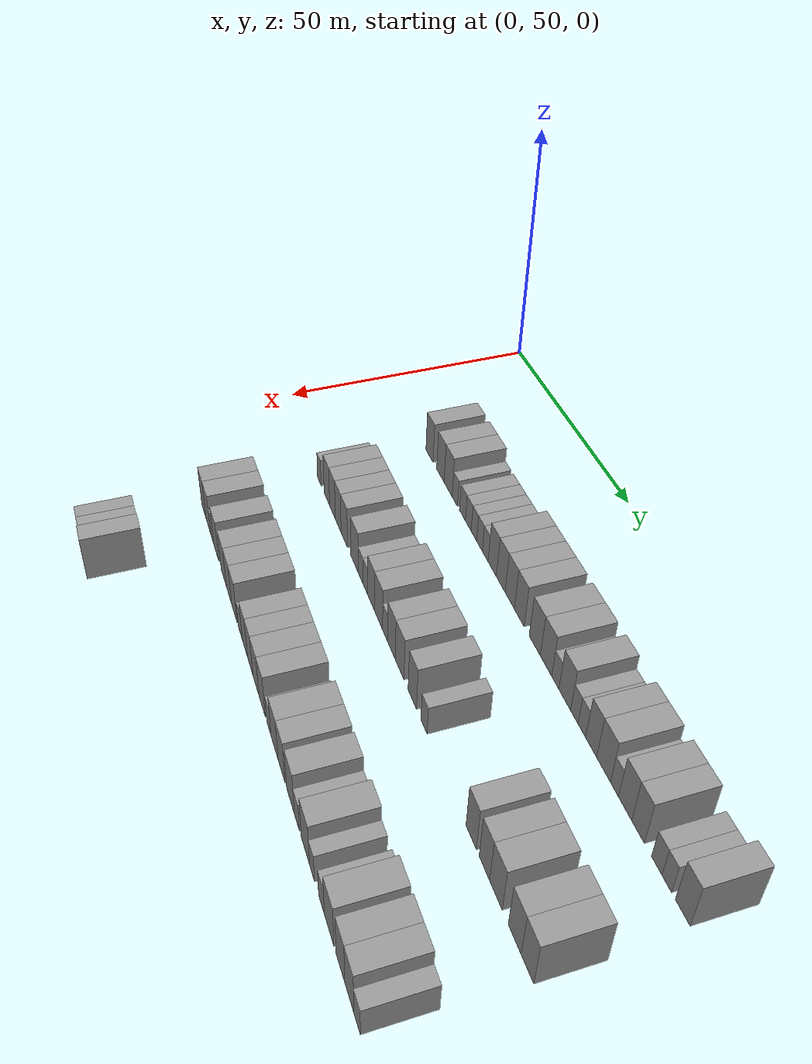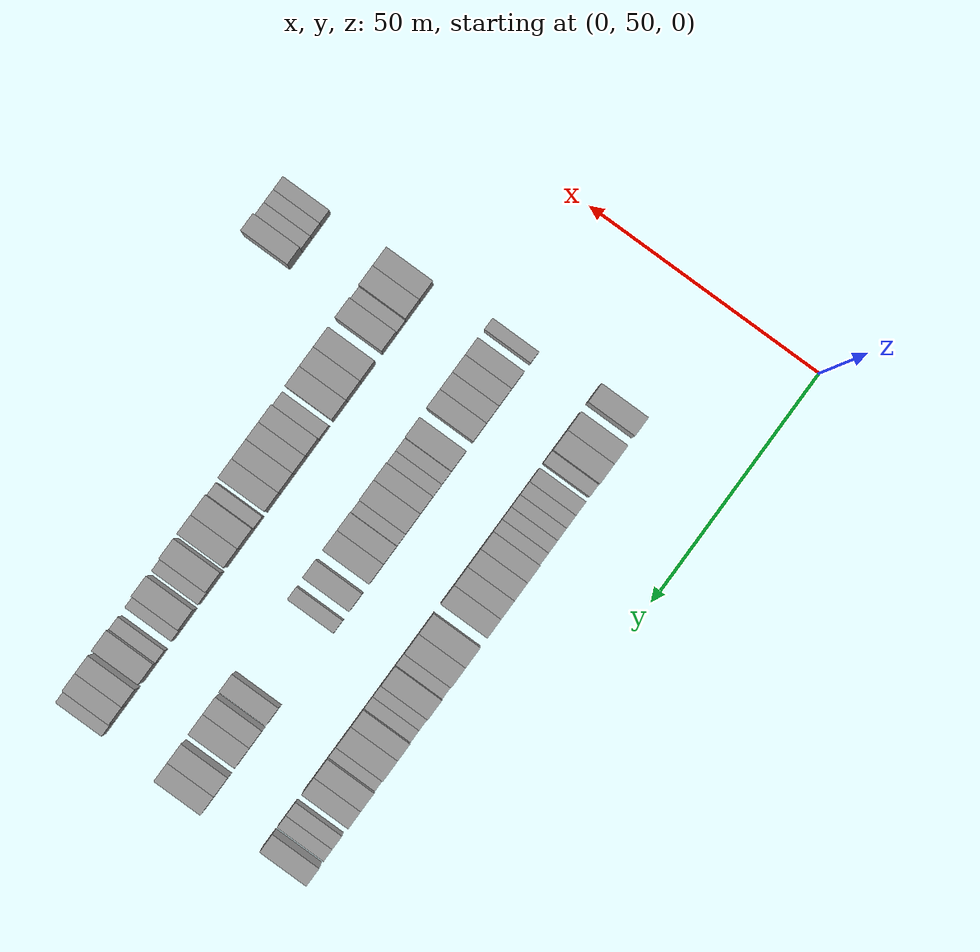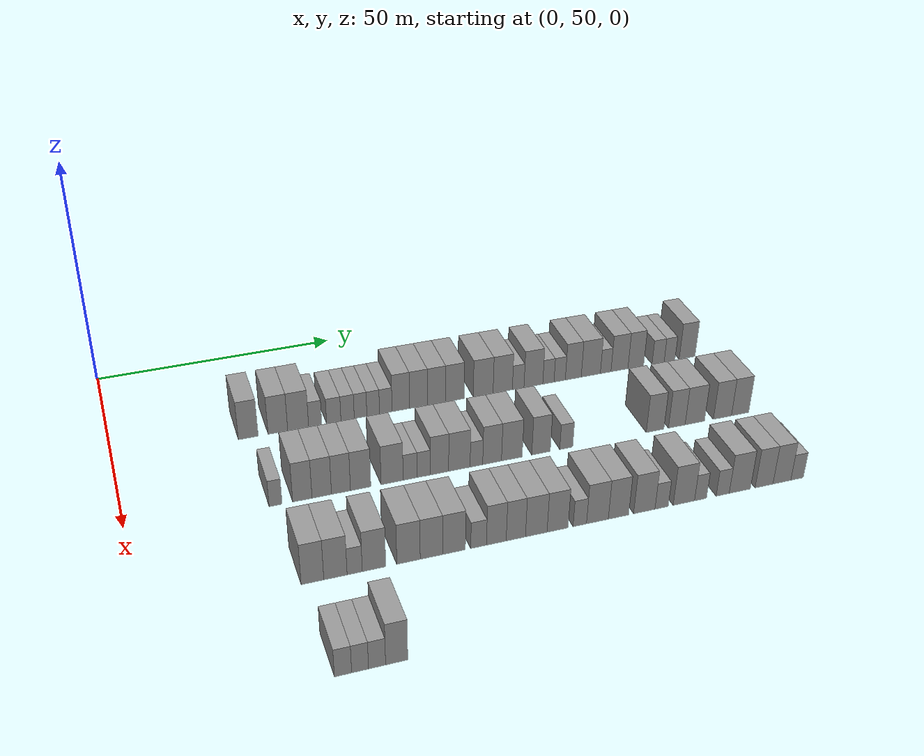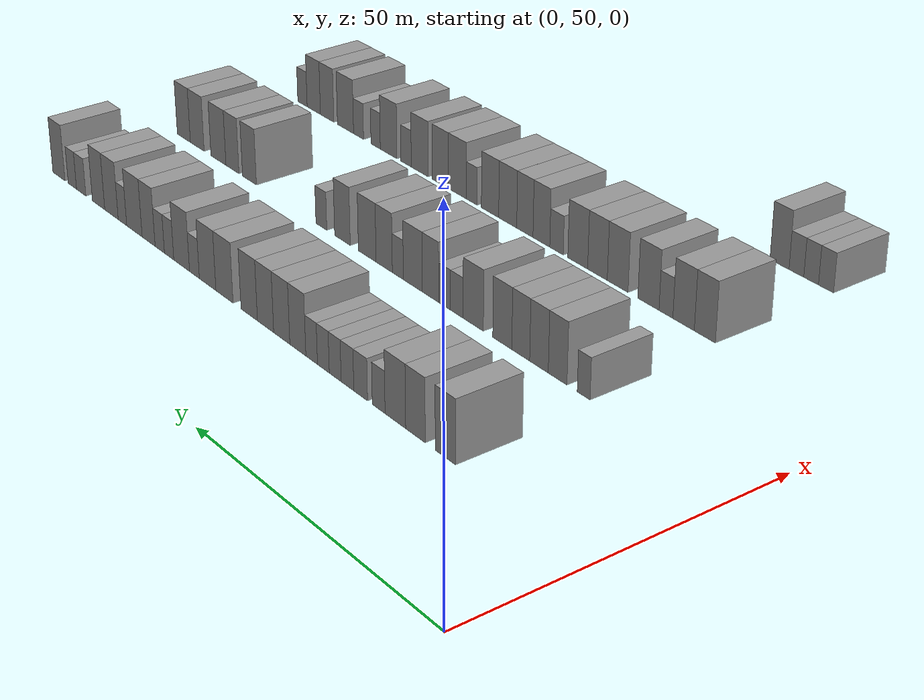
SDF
<sdf version="1.6">
 <world name="default">
  <model name="building_106">
   <static>1</static>
   <pose>25.0000 76.7027 0 0.000000 0.000000 0.000000</pose>
   <link name="link">
    <pose>0 0 4.50 0 0 0</pose>
    <collision name="collision"><geometry><box><size>10.0000 3.9942 9.0000</size></box></geometry></collision>
    <visual name="visual">
     <cast_shadows>0</cast_shadows>
     <geometry><box><size>10.0000 3.9942 9.0000</size></box></geometry>
     <material>
      <script>
       <uri>model://grey_wall/materials/scripts</uri>
       <uri>model://grey_wall/materials/textures</uri>
       <name>vrc/grey_wall</name>
      </script>
     </material>
    </visual>
   </link>
  </model>
  <model name="building_107">
   <static>1</static>
   <pose>25.0000 82.6907 0 0.000000 0.000000 0.000000</pose>
   <link name="link">
    <pose>0 0 4.50 0 0 0</pose>
    <collision name="collision"><geometry><box><size>10.0000 3.9817 9.0000</size></box></geometry></collision>
    <visual name="visual">
     <cast_shadows>0</cast_shadows>
     <geometry><box><size>10.0000 3.9817 9.0000</size></box></geometry>
     <material>
      <script>
       <uri>model://grey_wall/materials/scripts</uri>
       <uri>model://grey_wall/materials/textures</uri>
       <name>vrc/grey_wall</name>
      </script>
     </material>
    </visual>
   </link>
  </model>
  <model name="building_108">
   <static>1</static>
   <pose>25.0000 86.8249 0 0.000000 0.000000 0.000000</pose>
   <link name="link">
    <pose>0 0 4.50 0 0 0</pose>
    <collision name="collision"><geometry><box><size>10.0000 4.2866 9.0000</size></box></geometry></collision>
    <visual name="visual">
     <cast_shadows>0</cast_shadows>
     <geometry><box><size>10.0000 4.2866 9.0000</size></box></geometry>
     <material>
      <script>
       <uri>model://grey_wall/materials/scripts</uri>
       <uri>model://grey_wall/materials/textures</uri>
       <name>vrc/grey_wall</name>
      </script>
     </material>
    </visual>
   </link>
  </model>
  <model name="building_109">
   <static>1</static>
   <pose>25.0000 90.3235 0 0.000000 0.000000 0.000000</pose>
   <link name="link">
    <pose>0 0 3.00 0 0 0</pose>
    <collision name="collision"><geometry><box><size>10.0000 2.7106 6.0000</size></box></geometry></collision>
    <visual name="visual">
     <cast_shadows>0</cast_shadows>
     <geometry><box><size>10.0000 2.7106 6.0000</size></box></geometry>
     <material>
      <script>
       <uri>model://grey_wall/materials/scripts</uri>
       <uri>model://grey_wall/materials/textures</uri>
       <name>vrc/grey_wall</name>
      </script>
     </material>
    </visual>
   </link>
  </model>
  <model name="building_110">
   <static>1</static>
   <pose>25.0000 94.1667 0 0.000000 0.000000 0.000000</pose>
   <link name="link">
    <pose>0 0 3.00 0 0 0</pose>
    <collision name="collision"><geometry><box><size>10.0000 2.9757 6.0000</size></box></geometry></collision>
    <visual name="visual">
     <cast_shadows>0</cast_shadows>
     <geometry><box><size>10.0000 2.9757 6.0000</size></box></geometry>
     <material>
      <script>
       <uri>model://grey_wall/materials/scripts</uri>
       <uri>model://grey_wall/materials/textures</uri>
       <name>vrc/grey_wall</name>
      </script>
     </material>
    </visual>
   </link>
  </model>
  <model name="building_111">
   <static>1</static>
   <pose>25.0000 97.0424 0 0.000000 0.000000 0.000000</pose>
   <link name="link">
    <pose>0 0 3.00 0 0 0</pose>
    <collision name="collision"><geometry><box><size>10.0000 2.7758 6.0000</size></box></geometry></collision>
    <visual name="visual">
     <cast_shadows>0</cast_shadows>
     <geometry><box><size>10.0000 2.7758 6.0000</size></box></geometry>
     <material>
      <script>
       <uri>model://grey_wall/materials/scripts</uri>
       <uri>model://grey_wall/materials/textures</uri>
       <name>vrc/grey_wall</name>
      </script>
     </material>
    </visual>
   </link>
  </model>
  <model name="building_112">
   <static>1</static>
   <pose>25.0000 99.7522 0 0.000000 0.000000 0.000000</pose>
   <link name="link">
    <pose>0 0 3.00 0 0 0</pose>
    <collision name="collision"><geometry><box><size>10.0000 2.6437 6.0000</size></box></geometry></collision>
    <visual name="visual">
     <cast_shadows>0</cast_shadows>
     <geometry><box><size>10.0000 2.6437 6.0000</size></box></geometry>
     <material>
      <script>
       <uri>model://grey_wall/materials/scripts</uri>
       <uri>model://grey_wall/materials/textures</uri>
       <name>vrc/grey_wall</name>
      </script>
     </material>
    </visual>
   </link>
  </model>
  <model name="building_113">
   <static>1</static>
   <pose>25.0000 102.4102 0 0.000000 0.000000 0.000000</pose>
   <link name="link">
    <pose>0 0 3.00 0 0 0</pose>
    <collision name="collision"><geometry><box><size>10.0000 2.6722 6.0000</size></box></geometry></collision>
    <visual name="visual">
     <cast_shadows>0</cast_shadows>
     <geometry><box><size>10.0000 2.6722 6.0000</size></box></geometry>
     <material>
      <script>
       <uri>model://grey_wall/materials/scripts</uri>
       <uri>model://grey_wall/materials/textures</uri>
       <name>vrc/grey_wall</name>
      </script>
     </material>
    </visual>
   </link>
  </model>
  <model name="building_114">
   <static>1</static>
   <pose>25.0000 105.0721 0 0.000000 0.000000 0.000000</pose>
   <link name="link">
    <pose>0 0 3.00 0 0 0</pose>
    <collision name="collision"><geometry><box><size>10.0000 2.6515 6.0000</size></box></geometry></collision>
    <visual name="visual">
     <cast_shadows>0</cast_shadows>
     <geometry><box><size>10.0000 2.6515 6.0000</size></box></geometry>
     <material>
      <script>
       <uri>model://grey_wall/materials/scripts</uri>
       <uri>model://grey_wall/materials/textures</uri>
       <name>vrc/grey_wall</name>
      </script>
     </material>
    </visual>
   </link>
  </model>
  <model name="building_115">
   <static>1</static>
   <pose>25.0000 108.2667 0 0.000000 0.000000 0.000000</pose>
   <link name="link">
    <pose>0 0 4.50 0 0 0</pose>
    <collision name="collision"><geometry><box><size>10.0000 3.7378 9.0000</size></box></geometry></collision>
    <visual name="visual">
     <cast_shadows>0</cast_shadows>
     <geometry><box><size>10.0000 3.7378 9.0000</size></box></geometry>
     <material>
      <script>
       <uri>model://grey_wall/materials/scripts</uri>
       <uri>model://grey_wall/materials/textures</uri>
       <name>vrc/grey_wall</name>
      </script>
     </material>
    </visual>
   </link>
  </model>
  <model name="building_116">
   <static>1</static>
   <pose>25.0000 112.0498 0 0.000000 0.000000 0.000000</pose>
   <link name="link">
    <pose>0 0 4.50 0 0 0</pose>
    <collision name="collision"><geometry><box><size>10.0000 3.8282 9.0000</size></box></geometry></collision>
    <visual name="visual">
     <cast_shadows>0</cast_shadows>
     <geometry><box><size>10.0000 3.8282 9.0000</size></box></geometry>
     <material>
      <script>
       <uri>model://grey_wall/materials/scripts</uri>
       <uri>model://grey_wall/materials/textures</uri>
       <name>vrc/grey_wall</name>
      </script>
     </material>
    </visual>
   </link>
  </model>
  <model name="building_117">
   <static>1</static>
   <pose>25.0000 115.9300 0 0.000000 0.000000 0.000000</pose>
   <link name="link">
    <pose>0 0 4.50 0 0 0</pose>
    <collision name="collision"><geometry><box><size>10.0000 3.9321 9.0000</size></box></geometry></collision>
    <visual name="visual">
     <cast_shadows>0</cast_shadows>
     <geometry><box><size>10.0000 3.9321 9.0000</size></box></geometry>
     <material>
      <script>
       <uri>model://grey_wall/materials/scripts</uri>
       <uri>model://grey_wall/materials/textures</uri>
       <name>vrc/grey_wall</name>
      </script>
     </material>
    </visual>
   </link>
  </model>
  <model name="building_118">
   <static>1</static>
   <pose>25.0000 119.9202 0 0.000000 0.000000 0.000000</pose>
   <link name="link">
    <pose>0 0 4.50 0 0 0</pose>
    <collision name="collision"><geometry><box><size>10.0000 4.0483 9.0000</size></box></geometry></collision>
    <visual name="visual">
     <cast_shadows>0</cast_shadows>
     <geometry><box><size>10.0000 4.0483 9.0000</size></box></geometry>
     <material>
      <script>
       <uri>model://grey_wall/materials/scripts</uri>
       <uri>model://grey_wall/materials/textures</uri>
       <name>vrc/grey_wall</name>
      </script>
     </material>
    </visual>
   </link>
  </model>
  <model name="building_119">
   <static>1</static>
   <pose>25.0000 126.1278 0 0.000000 0.000000 0.000000</pose>
   <link name="link">
    <pose>0 0 4.50 0 0 0</pose>
    <collision name="collision"><geometry><box><size>10.0000 4.3670 9.0000</size></box></geometry></collision>
    <visual name="visual">
     <cast_shadows>0</cast_shadows>
     <geometry><box><size>10.0000 4.3670 9.0000</size></box></geometry>
     <material>
      <script>
       <uri>model://grey_wall/materials/scripts</uri>
       <uri>model://grey_wall/materials/textures</uri>
       <name>vrc/grey_wall</name>
      </script>
     </material>
    </visual>
   </link>
  </model>
  <model name="building_120">
   <static>1</static>
   <pose>25.0000 130.4576 0 0.000000 0.000000 0.000000</pose>
   <link name="link">
    <pose>0 0 4.50 0 0 0</pose>
    <collision name="collision"><geometry><box><size>10.0000 4.2925 9.0000</size></box></geometry></collision>
    <visual name="visual">
     <cast_shadows>0</cast_shadows>
     <geometry><box><size>10.0000 4.2925 9.0000</size></box></geometry>
     <material>
      <script>
       <uri>model://grey_wall/materials/scripts</uri>
       <uri>model://grey_wall/materials/textures</uri>
       <name>vrc/grey_wall</name>
      </script>
     </material>
    </visual>
   </link>
  </model>
  <model name="building_121">
   <static>1</static>
   <pose>25.0000 133.9042 0 0.000000 0.000000 0.000000</pose>
   <link name="link">
    <pose>0 0 3.00 0 0 0</pose>
    <collision name="collision"><geometry><box><size>10.0000 2.6008 6.0000</size></box></geometry></collision>
    <visual name="visual">
     <cast_shadows>0</cast_shadows>
     <geometry><box><size>10.0000 2.6008 6.0000</size></box></geometry>
     <material>
      <script>
       <uri>model://grey_wall/materials/scripts</uri>
       <uri>model://grey_wall/materials/textures</uri>
       <name>vrc/grey_wall</name>
      </script>
     </material>
    </visual>
   </link>
  </model>
  <model name="building_122">
   <static>1</static>
   <pose>25.0000 137.3210 0 0.000000 0.000000 0.000000</pose>
   <link name="link">
    <pose>0 0 4.50 0 0 0</pose>
    <collision name="collision"><geometry><box><size>10.0000 4.2329 9.0000</size></box></geometry></collision>
    <visual name="visual">
     <cast_shadows>0</cast_shadows>
     <geometry><box><size>10.0000 4.2329 9.0000</size></box></geometry>
     <material>
      <script>
       <uri>model://grey_wall/materials/scripts</uri>
       <uri>model://grey_wall/materials/textures</uri>
       <name>vrc/grey_wall</name>
      </script>
     </material>
    </visual>
   </link>
  </model>
  <model name="building_123">
   <static>1</static>
   <pose>25.0000 140.7127 0 0.000000 0.000000 0.000000</pose>
   <link name="link">
    <pose>0 0 3.00 0 0 0</pose>
    <collision name="collision"><geometry><box><size>10.0000 2.5505 6.0000</size></box></geometry></collision>
    <visual name="visual">
     <cast_shadows>0</cast_shadows>
     <geometry><box><size>10.0000 2.5505 6.0000</size></box></geometry>
     <material>
      <script>
       <uri>model://grey_wall/materials/scripts</uri>
       <uri>model://grey_wall/materials/textures</uri>
       <name>vrc/grey_wall</name>
      </script>
     </material>
    </visual>
   </link>
  </model>
  <model name="building_124">
   <static>1</static>
   <pose>25.0000 143.2748 0 0.000000 0.000000 0.000000</pose>
   <link name="link">
    <pose>0 0 3.00 0 0 0</pose>
    <collision name="collision"><geometry><box><size>10.0000 2.5737 6.0000</size></box></geometry></collision>
    <visual name="visual">
     <cast_shadows>0</cast_shadows>
     <geometry><box><size>10.0000 2.5737 6.0000</size></box></geometry>
     <material>
      <script>
       <uri>model://grey_wall/materials/scripts</uri>
       <uri>model://grey_wall/materials/textures</uri>
       <name>vrc/grey_wall</name>
      </script>
     </material>
    </visual>
   </link>
  </model>
  <model name="building_125">
   <static>1</static>
   <pose>25.0000 146.3825 0 0.000000 0.000000 0.000000</pose>
   <link name="link">
    <pose>0 0 4.50 0 0 0</pose>
    <collision name="collision"><geometry><box><size>10.0000 3.6417 9.0000</size></box></geometry></collision>
    <visual name="visual">
     <cast_shadows>0</cast_shadows>
     <geometry><box><size>10.0000 3.6417 9.0000</size></box></geometry>
     <material>
      <script>
       <uri>model://grey_wall/materials/scripts</uri>
       <uri>model://grey_wall/materials/textures</uri>
       <name>vrc/grey_wall</name>
      </script>
     </material>
    </visual>
   </link>
  </model>
  <model name="building_126">
   <static>1</static>
   <pose>25.0000 150.4087 0 0.000000 0.000000 0.000000</pose>
   <link name="link">
    <pose>0 0 4.50 0 0 0</pose>
    <collision name="collision"><geometry><box><size>10.0000 4.4107 9.0000</size></box></geometry></collision>
    <visual name="visual">
     <cast_shadows>0</cast_shadows>
     <geometry><box><size>10.0000 4.4107 9.0000</size></box></geometry>
     <material>
      <script>
       <uri>model://grey_wall/materials/scripts</uri>
       <uri>model://grey_wall/materials/textures</uri>
       <name>vrc/grey_wall</name>
      </script>
     </material>
    </visual>
   </link>
  </model>
  <model name="building_127">
   <static>1</static>
   <pose>25.0000 153.8480 0 0.000000 0.000000 0.000000</pose>
   <link name="link">
    <pose>0 0 3.00 0 0 0</pose>
    <collision name="collision"><geometry><box><size>10.0000 2.4679 6.0000</size></box></geometry></collision>
    <visual name="visual">
     <cast_shadows>0</cast_shadows>
     <geometry><box><size>10.0000 2.4679 6.0000</size></box></geometry>
     <material>
      <script>
       <uri>model://grey_wall/materials/scripts</uri>
       <uri>model://grey_wall/materials/textures</uri>
       <name>vrc/grey_wall</name>
      </script>
     </material>
    </visual>
   </link>
  </model>
  <model name="building_128">
   <static>1</static>
   <pose>25.0000 157.0626 0 0.000000 0.000000 0.000000</pose>
   <link name="link">
    <pose>0 0 4.50 0 0 0</pose>
    <collision name="collision"><geometry><box><size>10.0000 3.9612 9.0000</size></box></geometry></collision>
    <visual name="visual">
     <cast_shadows>0</cast_shadows>
     <geometry><box><size>10.0000 3.9612 9.0000</size></box></geometry>
     <material>
      <script>
       <uri>model://grey_wall/materials/scripts</uri>
       <uri>model://grey_wall/materials/textures</uri>
       <name>vrc/grey_wall</name>
      </script>
     </material>
    </visual>
   </link>
  </model>
  <model name="building_129">
   <static>1</static>
   <pose>25.0000 160.8853 0 0.000000 0.000000 0.000000</pose>
   <link name="link">
    <pose>0 0 4.50 0 0 0</pose>
    <collision name="collision"><geometry><box><size>10.0000 3.6843 9.0000</size></box></geometry></collision>
    <visual name="visual">
     <cast_shadows>0</cast_shadows>
     <geometry><box><size>10.0000 3.6843 9.0000</size></box></geometry>
     <material>
      <script>
       <uri>model://grey_wall/materials/scripts</uri>
       <uri>model://grey_wall/materials/textures</uri>
       <name>vrc/grey_wall</name>
      </script>
     </material>
    </visual>
   </link>
  </model>
  <model name="building_130">
   <static>1</static>
   <pose>25.0000 166.1612 0 0.000000 0.000000 0.000000</pose>
   <link name="link">
    <pose>0 0 3.00 0 0 0</pose>
    <collision name="collision"><geometry><box><size>10.0000 2.8673 6.0000</size></box></geometry></collision>
    <visual name="visual">
     <cast_shadows>0</cast_shadows>
     <geometry><box><size>10.0000 2.8673 6.0000</size></box></geometry>
     <material>
      <script>
       <uri>model://grey_wall/materials/scripts</uri>
       <uri>model://grey_wall/materials/textures</uri>
       <name>vrc/grey_wall</name>
      </script>
     </material>
    </visual>
   </link>
  </model>
  <model name="building_131">
   <static>1</static>
   <pose>25.0000 168.8858 0 0.000000 0.000000 0.000000</pose>
   <link name="link">
    <pose>0 0 3.00 0 0 0</pose>
    <collision name="collision"><geometry><box><size>10.0000 2.5820 6.0000</size></box></geometry></collision>
    <visual name="visual">
     <cast_shadows>0</cast_shadows>
     <geometry><box><size>10.0000 2.5820 6.0000</size></box></geometry>
     <material>
      <script>
       <uri>model://grey_wall/materials/scripts</uri>
       <uri>model://grey_wall/materials/textures</uri>
       <name>vrc/grey_wall</name>
      </script>
     </material>
    </visual>
   </link>
  </model>
  <model name="building_132">
   <static>1</static>
   <pose>25.0000 173.0823 0 0.000000 0.000000 0.000000</pose>
   <link name="link">
    <pose>0 0 4.50 0 0 0</pose>
    <collision name="collision"><geometry><box><size>10.0000 3.8110 9.0000</size></box></geometry></collision>
    <visual name="visual">
     <cast_shadows>0</cast_shadows>
     <geometry><box><size>10.0000 3.8110 9.0000</size></box></geometry>
     <material>
      <script>
       <uri>model://grey_wall/materials/scripts</uri>
       <uri>model://grey_wall/materials/textures</uri>
       <name>vrc/grey_wall</name>
      </script>
     </material>
    </visual>
   </link>
  </model>
  <model name="building_298">
   <static>1</static>
   <pose>47.0000 77.7073 0 0.000000 0.000000 0.000000</pose>
   <link name="link">
    <pose>0 0 3.00 0 0 0</pose>
    <collision name="collision"><geometry><box><size>10.0000 2.4543 6.0000</size></box></geometry></collision>
    <visual name="visual">
     <cast_shadows>0</cast_shadows>
     <geometry><box><size>10.0000 2.4543 6.0000</size></box></geometry>
     <material>
      <script>
       <uri>model://grey_wall/materials/scripts</uri>
       <uri>model://grey_wall/materials/textures</uri>
       <name>vrc/grey_wall</name>
      </script>
     </material>
    </visual>
   </link>
  </model>
  <model name="building_299">
   <static>1</static>
   <pose>47.0000 82.7753 0 0.000000 0.000000 0.000000</pose>
   <link name="link">
    <pose>0 0 4.50 0 0 0</pose>
    <collision name="collision"><geometry><box><size>10.0000 3.6816 9.0000</size></box></geometry></collision>
    <visual name="visual">
     <cast_shadows>0</cast_shadows>
     <geometry><box><size>10.0000 3.6816 9.0000</size></box></geometry>
     <material>
      <script>
       <uri>model://grey_wall/materials/scripts</uri>
       <uri>model://grey_wall/materials/textures</uri>
       <name>vrc/grey_wall</name>
      </script>
     </material>
    </visual>
   </link>
  </model>
  <model name="building_300">
   <static>1</static>
   <pose>47.0000 86.4823 0 0.000000 0.000000 0.000000</pose>
   <link name="link">
    <pose>0 0 4.50 0 0 0</pose>
    <collision name="collision"><geometry><box><size>10.0000 3.7324 9.0000</size></box></geometry></collision>
    <visual name="visual">
     <cast_shadows>0</cast_shadows>
     <geometry><box><size>10.0000 3.7324 9.0000</size></box></geometry>
     <material>
      <script>
       <uri>model://grey_wall/materials/scripts</uri>
       <uri>model://grey_wall/materials/textures</uri>
       <name>vrc/grey_wall</name>
      </script>
     </material>
    </visual>
   </link>
  </model>
  <model name="building_301">
   <static>1</static>
   <pose>47.0000 90.1769 0 0.000000 0.000000 0.000000</pose>
   <link name="link">
    <pose>0 0 4.50 0 0 0</pose>
    <collision name="collision"><geometry><box><size>10.0000 3.6568 9.0000</size></box></geometry></collision>
    <visual name="visual">
     <cast_shadows>0</cast_shadows>
     <geometry><box><size>10.0000 3.6568 9.0000</size></box></geometry>
     <material>
      <script>
       <uri>model://grey_wall/materials/scripts</uri>
       <uri>model://grey_wall/materials/textures</uri>
       <name>vrc/grey_wall</name>
      </script>
     </material>
    </visual>
   </link>
  </model>
  <model name="building_302">
   <static>1</static>
   <pose>47.0000 93.9878 0 0.000000 0.000000 0.000000</pose>
   <link name="link">
    <pose>0 0 4.50 0 0 0</pose>
    <collision name="collision"><geometry><box><size>10.0000 3.9651 9.0000</size></box></geometry></collision>
    <visual name="visual">
     <cast_shadows>0</cast_shadows>
     <geometry><box><size>10.0000 3.9651 9.0000</size></box></geometry>
     <material>
      <script>
       <uri>model://grey_wall/materials/scripts</uri>
       <uri>model://grey_wall/materials/textures</uri>
       <name>vrc/grey_wall</name>
      </script>
     </material>
    </visual>
   </link>
  </model>
  <model name="building_303">
   <static>1</static>
   <pose>47.0000 100.1431 0 0.000000 0.000000 0.000000</pose>
   <link name="link">
    <pose>0 0 4.50 0 0 0</pose>
    <collision name="collision"><geometry><box><size>10.0000 4.3455 9.0000</size></box></geometry></collision>
    <visual name="visual">
     <cast_shadows>0</cast_shadows>
     <geometry><box><size>10.0000 4.3455 9.0000</size></box></geometry>
     <material>
      <script>
       <uri>model://grey_wall/materials/scripts</uri>
       <uri>model://grey_wall/materials/textures</uri>
       <name>vrc/grey_wall</name>
      </script>
     </material>
    </visual>
   </link>
  </model>
  <model name="building_304">
   <static>1</static>
   <pose>47.0000 103.6935 0 0.000000 0.000000 0.000000</pose>
   <link name="link">
    <pose>0 0 3.00 0 0 0</pose>
    <collision name="collision"><geometry><box><size>10.0000 2.7554 6.0000</size></box></geometry></collision>
    <visual name="visual">
     <cast_shadows>0</cast_shadows>
     <geometry><box><size>10.0000 2.7554 6.0000</size></box></geometry>
     <material>
      <script>
       <uri>model://grey_wall/materials/scripts</uri>
       <uri>model://grey_wall/materials/textures</uri>
       <name>vrc/grey_wall</name>
      </script>
     </material>
    </visual>
   </link>
  </model>
  <model name="building_305">
   <static>1</static>
   <pose>47.0000 106.3929 0 0.000000 0.000000 0.000000</pose>
   <link name="link">
    <pose>0 0 3.00 0 0 0</pose>
    <collision name="collision"><geometry><box><size>10.0000 2.6433 6.0000</size></box></geometry></collision>
    <visual name="visual">
     <cast_shadows>0</cast_shadows>
     <geometry><box><size>10.0000 2.6433 6.0000</size></box></geometry>
     <material>
      <script>
       <uri>model://grey_wall/materials/scripts</uri>
       <uri>model://grey_wall/materials/textures</uri>
       <name>vrc/grey_wall</name>
      </script>
     </material>
    </visual>
   </link>
  </model>
  <model name="building_306">
   <static>1</static>
   <pose>47.0000 109.5614 0 0.000000 0.000000 0.000000</pose>
   <link name="link">
    <pose>0 0 4.50 0 0 0</pose>
    <collision name="collision"><geometry><box><size>10.0000 3.6937 9.0000</size></box></geometry></collision>
    <visual name="visual">
     <cast_shadows>0</cast_shadows>
     <geometry><box><size>10.0000 3.6937 9.0000</size></box></geometry>
     <material>
      <script>
       <uri>model://grey_wall/materials/scripts</uri>
       <uri>model://grey_wall/materials/textures</uri>
       <name>vrc/grey_wall</name>
      </script>
     </material>
    </visual>
   </link>
  </model>
  <model name="building_307">
   <static>1</static>
   <pose>47.0000 113.5830 0 0.000000 0.000000 0.000000</pose>
   <link name="link">
    <pose>0 0 4.50 0 0 0</pose>
    <collision name="collision"><geometry><box><size>10.0000 4.3495 9.0000</size></box></geometry></collision>
    <visual name="visual">
     <cast_shadows>0</cast_shadows>
     <geometry><box><size>10.0000 4.3495 9.0000</size></box></geometry>
     <material>
      <script>
       <uri>model://grey_wall/materials/scripts</uri>
       <uri>model://grey_wall/materials/textures</uri>
       <name>vrc/grey_wall</name>
      </script>
     </material>
    </visual>
   </link>
  </model>
  <model name="building_308">
   <static>1</static>
   <pose>47.0000 117.0455 0 0.000000 0.000000 0.000000</pose>
   <link name="link">
    <pose>0 0 3.00 0 0 0</pose>
    <collision name="collision"><geometry><box><size>10.0000 2.5754 6.0000</size></box></geometry></collision>
    <visual name="visual">
     <cast_shadows>0</cast_shadows>
     <geometry><box><size>10.0000 2.5754 6.0000</size></box></geometry>
     <material>
      <script>
       <uri>model://grey_wall/materials/scripts</uri>
       <uri>model://grey_wall/materials/textures</uri>
       <name>vrc/grey_wall</name>
      </script>
     </material>
    </visual>
   </link>
  </model>
  <model name="building_309">
   <static>1</static>
   <pose>47.0000 120.2631 0 0.000000 0.000000 0.000000</pose>
   <link name="link">
    <pose>0 0 4.50 0 0 0</pose>
    <collision name="collision"><geometry><box><size>10.0000 3.8599 9.0000</size></box></geometry></collision>
    <visual name="visual">
     <cast_shadows>0</cast_shadows>
     <geometry><box><size>10.0000 3.8599 9.0000</size></box></geometry>
     <material>
      <script>
       <uri>model://grey_wall/materials/scripts</uri>
       <uri>model://grey_wall/materials/textures</uri>
       <name>vrc/grey_wall</name>
      </script>
     </material>
    </visual>
   </link>
  </model>
  <model name="building_310">
   <static>1</static>
   <pose>47.0000 124.3333 0 0.000000 0.000000 0.000000</pose>
   <link name="link">
    <pose>0 0 4.50 0 0 0</pose>
    <collision name="collision"><geometry><box><size>10.0000 4.2805 9.0000</size></box></geometry></collision>
    <visual name="visual">
     <cast_shadows>0</cast_shadows>
     <geometry><box><size>10.0000 4.2805 9.0000</size></box></geometry>
     <material>
      <script>
       <uri>model://grey_wall/materials/scripts</uri>
       <uri>model://grey_wall/materials/textures</uri>
       <name>vrc/grey_wall</name>
      </script>
     </material>
    </visual>
   </link>
  </model>
  <model name="building_311">
   <static>1</static>
   <pose>47.0000 130.4119 0 0.000000 0.000000 0.000000</pose>
   <link name="link">
    <pose>0 0 4.50 0 0 0</pose>
    <collision name="collision"><geometry><box><size>10.0000 3.8766 9.0000</size></box></geometry></collision>
    <visual name="visual">
     <cast_shadows>0</cast_shadows>
     <geometry><box><size>10.0000 3.8766 9.0000</size></box></geometry>
     <material>
      <script>
       <uri>model://grey_wall/materials/scripts</uri>
       <uri>model://grey_wall/materials/textures</uri>
       <name>vrc/grey_wall</name>
      </script>
     </material>
    </visual>
   </link>
  </model>
  <model name="building_312">
   <static>1</static>
   <pose>47.0000 135.7280 0 0.000000 0.000000 0.000000</pose>
   <link name="link">
    <pose>0 0 3.00 0 0 0</pose>
    <collision name="collision"><geometry><box><size>10.0000 2.7555 6.0000</size></box></geometry></collision>
    <visual name="visual">
     <cast_shadows>0</cast_shadows>
     <geometry><box><size>10.0000 2.7555 6.0000</size></box></geometry>
     <material>
      <script>
       <uri>model://grey_wall/materials/scripts</uri>
       <uri>model://grey_wall/materials/textures</uri>
       <name>vrc/grey_wall</name>
      </script>
     </material>
    </visual>
   </link>
  </model>
  <model name="building_313">
   <static>1</static>
   <pose>47.0000 154.9068 0 0.000000 0.000000 0.000000</pose>
   <link name="link">
    <pose>0 0 4.50 0 0 0</pose>
    <collision name="collision"><geometry><box><size>10.0000 3.8674 9.0000</size></box></geometry></collision>
    <visual name="visual">
     <cast_shadows>0</cast_shadows>
     <geometry><box><size>10.0000 3.8674 9.0000</size></box></geometry>
     <material>
      <script>
       <uri>model://grey_wall/materials/scripts</uri>
       <uri>model://grey_wall/materials/textures</uri>
       <name>vrc/grey_wall</name>
      </script>
     </material>
    </visual>
   </link>
  </model>
  <model name="building_314">
   <static>1</static>
   <pose>47.0000 159.6896 0 0.000000 0.000000 0.000000</pose>
   <link name="link">
    <pose>0 0 4.50 0 0 0</pose>
    <collision name="collision"><geometry><box><size>10.0000 3.6983 9.0000</size></box></geometry></collision>
    <visual name="visual">
     <cast_shadows>0</cast_shadows>
     <geometry><box><size>10.0000 3.6983 9.0000</size></box></geometry>
     <material>
      <script>
       <uri>model://grey_wall/materials/scripts</uri>
       <uri>model://grey_wall/materials/textures</uri>
       <name>vrc/grey_wall</name>
      </script>
     </material>
    </visual>
   </link>
  </model>
  <model name="building_315">
   <static>1</static>
   <pose>47.0000 163.7073 0 0.000000 0.000000 0.000000</pose>
   <link name="link">
    <pose>0 0 4.50 0 0 0</pose>
    <collision name="collision"><geometry><box><size>10.0000 4.3372 9.0000</size></box></geometry></collision>
    <visual name="visual">
     <cast_shadows>0</cast_shadows>
     <geometry><box><size>10.0000 4.3372 9.0000</size></box></geometry>
     <material>
      <script>
       <uri>model://grey_wall/materials/scripts</uri>
       <uri>model://grey_wall/materials/textures</uri>
       <name>vrc/grey_wall</name>
      </script>
     </material>
    </visual>
   </link>
  </model>
  <model name="building_316">
   <static>1</static>
   <pose>47.0000 169.9186 0 0.000000 0.000000 0.000000</pose>
   <link name="link">
    <pose>0 0 4.50 0 0 0</pose>
    <collision name="collision"><geometry><box><size>10.0000 4.0854 9.0000</size></box></geometry></collision>
    <visual name="visual">
     <cast_shadows>0</cast_shadows>
     <geometry><box><size>10.0000 4.0854 9.0000</size></box></geometry>
     <material>
      <script>
       <uri>model://grey_wall/materials/scripts</uri>
       <uri>model://grey_wall/materials/textures</uri>
       <name>vrc/grey_wall</name>
      </script>
     </material>
    </visual>
   </link>
  </model>
  <model name="building_317">
   <static>1</static>
   <pose>47.0000 173.9270 0 0.000000 0.000000 0.000000</pose>
   <link name="link">
    <pose>0 0 4.50 0 0 0</pose>
    <collision name="collision"><geometry><box><size>10.0000 3.9312 9.0000</size></box></geometry></collision>
    <visual name="visual">
     <cast_shadows>0</cast_shadows>
     <geometry><box><size>10.0000 3.9312 9.0000</size></box></geometry>
     <material>
      <script>
       <uri>model://grey_wall/materials/scripts</uri>
       <uri>model://grey_wall/materials/textures</uri>
       <name>vrc/grey_wall</name>
      </script>
     </material>
    </visual>
   </link>
  </model>
  <model name="building_485">
   <static>1</static>
   <pose>69.0000 79.6303 0 0.000000 0.000000 0.000000</pose>
   <link name="link">
    <pose>0 0 4.50 0 0 0</pose>
    <collision name="collision"><geometry><box><size>10.0000 3.9961 9.0000</size></box></geometry></collision>
    <visual name="visual">
     <cast_shadows>0</cast_shadows>
     <geometry><box><size>10.0000 3.9961 9.0000</size></box></geometry>
     <material>
      <script>
       <uri>model://grey_wall/materials/scripts</uri>
       <uri>model://grey_wall/materials/textures</uri>
       <name>vrc/grey_wall</name>
      </script>
     </material>
    </visual>
   </link>
  </model>
  <model name="building_486">
   <static>1</static>
   <pose>69.0000 83.6988 0 0.000000 0.000000 0.000000</pose>
   <link name="link">
    <pose>0 0 4.50 0 0 0</pose>
    <collision name="collision"><geometry><box><size>10.0000 4.1410 9.0000</size></box></geometry></collision>
    <visual name="visual">
     <cast_shadows>0</cast_shadows>
     <geometry><box><size>10.0000 4.1410 9.0000</size></box></geometry>
     <material>
      <script>
       <uri>model://grey_wall/materials/scripts</uri>
       <uri>model://grey_wall/materials/textures</uri>
       <name>vrc/grey_wall</name>
      </script>
     </material>
    </visual>
   </link>
  </model>
  <model name="building_487">
   <static>1</static>
   <pose>69.0000 87.1268 0 0.000000 0.000000 0.000000</pose>
   <link name="link">
    <pose>0 0 3.00 0 0 0</pose>
    <collision name="collision"><geometry><box><size>10.0000 2.7150 6.0000</size></box></geometry></collision>
    <visual name="visual">
     <cast_shadows>0</cast_shadows>
     <geometry><box><size>10.0000 2.7150 6.0000</size></box></geometry>
     <material>
      <script>
       <uri>model://grey_wall/materials/scripts</uri>
       <uri>model://grey_wall/materials/textures</uri>
       <name>vrc/grey_wall</name>
      </script>
     </material>
    </visual>
   </link>
  </model>
  <model name="building_488">
   <static>1</static>
   <pose>69.0000 90.6031 0 0.000000 0.000000 0.000000</pose>
   <link name="link">
    <pose>0 0 4.50 0 0 0</pose>
    <collision name="collision"><geometry><box><size>10.0000 4.2375 9.0000</size></box></geometry></collision>
    <visual name="visual">
     <cast_shadows>0</cast_shadows>
     <geometry><box><size>10.0000 4.2375 9.0000</size></box></geometry>
     <material>
      <script>
       <uri>model://grey_wall/materials/scripts</uri>
       <uri>model://grey_wall/materials/textures</uri>
       <name>vrc/grey_wall</name>
      </script>
     </material>
    </visual>
   </link>
  </model>
  <model name="building_489">
   <static>1</static>
   <pose>69.0000 96.8660 0 0.000000 0.000000 0.000000</pose>
   <link name="link">
    <pose>0 0 4.50 0 0 0</pose>
    <collision name="collision"><geometry><box><size>10.0000 4.2883 9.0000</size></box></geometry></collision>
    <visual name="visual">
     <cast_shadows>0</cast_shadows>
     <geometry><box><size>10.0000 4.2883 9.0000</size></box></geometry>
     <material>
      <script>
       <uri>model://grey_wall/materials/scripts</uri>
       <uri>model://grey_wall/materials/textures</uri>
       <name>vrc/grey_wall</name>
      </script>
     </material>
    </visual>
   </link>
  </model>
  <model name="building_490">
   <static>1</static>
   <pose>69.0000 101.0734 0 0.000000 0.000000 0.000000</pose>
   <link name="link">
    <pose>0 0 4.50 0 0 0</pose>
    <collision name="collision"><geometry><box><size>10.0000 4.1265 9.0000</size></box></geometry></collision>
    <visual name="visual">
     <cast_shadows>0</cast_shadows>
     <geometry><box><size>10.0000 4.1265 9.0000</size></box></geometry>
     <material>
      <script>
       <uri>model://grey_wall/materials/scripts</uri>
       <uri>model://grey_wall/materials/textures</uri>
       <name>vrc/grey_wall</name>
      </script>
     </material>
    </visual>
   </link>
  </model>
  <model name="building_491">
   <static>1</static>
   <pose>69.0000 105.2635 0 0.000000 0.000000 0.000000</pose>
   <link name="link">
    <pose>0 0 4.50 0 0 0</pose>
    <collision name="collision"><geometry><box><size>10.0000 4.2537 9.0000</size></box></geometry></collision>
    <visual name="visual">
     <cast_shadows>0</cast_shadows>
     <geometry><box><size>10.0000 4.2537 9.0000</size></box></geometry>
     <material>
      <script>
       <uri>model://grey_wall/materials/scripts</uri>
       <uri>model://grey_wall/materials/textures</uri>
       <name>vrc/grey_wall</name>
      </script>
     </material>
    </visual>
   </link>
  </model>
  <model name="building_492">
   <static>1</static>
   <pose>69.0000 109.8643 0 0.000000 0.000000 0.000000</pose>
   <link name="link">
    <pose>0 0 3.00 0 0 0</pose>
    <collision name="collision"><geometry><box><size>10.0000 2.9479 6.0000</size></box></geometry></collision>
    <visual name="visual">
     <cast_shadows>0</cast_shadows>
     <geometry><box><size>10.0000 2.9479 6.0000</size></box></geometry>
     <material>
      <script>
       <uri>model://grey_wall/materials/scripts</uri>
       <uri>model://grey_wall/materials/textures</uri>
       <name>vrc/grey_wall</name>
      </script>
     </material>
    </visual>
   </link>
  </model>
  <model name="building_493">
   <static>1</static>
   <pose>69.0000 113.2132 0 0.000000 0.000000 0.000000</pose>
   <link name="link">
    <pose>0 0 4.50 0 0 0</pose>
    <collision name="collision"><geometry><box><size>10.0000 3.7499 9.0000</size></box></geometry></collision>
    <visual name="visual">
     <cast_shadows>0</cast_shadows>
     <geometry><box><size>10.0000 3.7499 9.0000</size></box></geometry>
     <material>
      <script>
       <uri>model://grey_wall/materials/scripts</uri>
       <uri>model://grey_wall/materials/textures</uri>
       <name>vrc/grey_wall</name>
      </script>
     </material>
    </visual>
   </link>
  </model>
  <model name="building_494">
   <static>1</static>
   <pose>69.0000 116.9306 0 0.000000 0.000000 0.000000</pose>
   <link name="link">
    <pose>0 0 4.50 0 0 0</pose>
    <collision name="collision"><geometry><box><size>10.0000 3.6851 9.0000</size></box></geometry></collision>
    <visual name="visual">
     <cast_shadows>0</cast_shadows>
     <geometry><box><size>10.0000 3.6851 9.0000</size></box></geometry>
     <material>
      <script>
       <uri>model://grey_wall/materials/scripts</uri>
       <uri>model://grey_wall/materials/textures</uri>
       <name>vrc/grey_wall</name>
      </script>
     </material>
    </visual>
   </link>
  </model>
  <model name="building_495">
   <static>1</static>
   <pose>69.0000 120.8574 0 0.000000 0.000000 0.000000</pose>
   <link name="link">
    <pose>0 0 4.50 0 0 0</pose>
    <collision name="collision"><geometry><box><size>10.0000 4.1684 9.0000</size></box></geometry></collision>
    <visual name="visual">
     <cast_shadows>0</cast_shadows>
     <geometry><box><size>10.0000 4.1684 9.0000</size></box></geometry>
     <material>
      <script>
       <uri>model://grey_wall/materials/scripts</uri>
       <uri>model://grey_wall/materials/textures</uri>
       <name>vrc/grey_wall</name>
      </script>
     </material>
    </visual>
   </link>
  </model>
  <model name="building_496">
   <static>1</static>
   <pose>69.0000 124.9801 0 0.000000 0.000000 0.000000</pose>
   <link name="link">
    <pose>0 0 4.50 0 0 0</pose>
    <collision name="collision"><geometry><box><size>10.0000 4.0771 9.0000</size></box></geometry></collision>
    <visual name="visual">
     <cast_shadows>0</cast_shadows>
     <geometry><box><size>10.0000 4.0771 9.0000</size></box></geometry>
     <material>
      <script>
       <uri>model://grey_wall/materials/scripts</uri>
       <uri>model://grey_wall/materials/textures</uri>
       <name>vrc/grey_wall</name>
      </script>
     </material>
    </visual>
   </link>
  </model>
  <model name="building_497">
   <static>1</static>
   <pose>69.0000 129.3316 0 0.000000 0.000000 0.000000</pose>
   <link name="link">
    <pose>0 0 3.00 0 0 0</pose>
    <collision name="collision"><geometry><box><size>10.0000 2.6259 6.0000</size></box></geometry></collision>
    <visual name="visual">
     <cast_shadows>0</cast_shadows>
     <geometry><box><size>10.0000 2.6259 6.0000</size></box></geometry>
     <material>
      <script>
       <uri>model://grey_wall/materials/scripts</uri>
       <uri>model://grey_wall/materials/textures</uri>
       <name>vrc/grey_wall</name>
      </script>
     </material>
    </visual>
   </link>
  </model>
  <model name="building_498">
   <static>1</static>
   <pose>69.0000 132.7993 0 0.000000 0.000000 0.000000</pose>
   <link name="link">
    <pose>0 0 4.50 0 0 0</pose>
    <collision name="collision"><geometry><box><size>10.0000 4.3095 9.0000</size></box></geometry></collision>
    <visual name="visual">
     <cast_shadows>0</cast_shadows>
     <geometry><box><size>10.0000 4.3095 9.0000</size></box></geometry>
     <material>
      <script>
       <uri>model://grey_wall/materials/scripts</uri>
       <uri>model://grey_wall/materials/textures</uri>
       <name>vrc/grey_wall</name>
      </script>
     </material>
    </visual>
   </link>
  </model>
  <model name="building_499">
   <static>1</static>
   <pose>69.0000 136.9867 0 0.000000 0.000000 0.000000</pose>
   <link name="link">
    <pose>0 0 4.50 0 0 0</pose>
    <collision name="collision"><geometry><box><size>10.0000 4.0652 9.0000</size></box></geometry></collision>
    <visual name="visual">
     <cast_shadows>0</cast_shadows>
     <geometry><box><size>10.0000 4.0652 9.0000</size></box></geometry>
     <material>
      <script>
       <uri>model://grey_wall/materials/scripts</uri>
       <uri>model://grey_wall/materials/textures</uri>
       <name>vrc/grey_wall</name>
      </script>
     </material>
    </visual>
   </link>
  </model>
  <model name="building_500">
   <static>1</static>
   <pose>69.0000 142.1716 0 0.000000 0.000000 0.000000</pose>
   <link name="link">
    <pose>0 0 4.50 0 0 0</pose>
    <collision name="collision"><geometry><box><size>10.0000 4.3045 9.0000</size></box></geometry></collision>
    <visual name="visual">
     <cast_shadows>0</cast_shadows>
     <geometry><box><size>10.0000 4.3045 9.0000</size></box></geometry>
     <material>
      <script>
       <uri>model://grey_wall/materials/scripts</uri>
       <uri>model://grey_wall/materials/textures</uri>
       <name>vrc/grey_wall</name>
      </script>
     </material>
    </visual>
   </link>
  </model>
  <model name="building_501">
   <static>1</static>
   <pose>69.0000 145.6760 0 0.000000 0.000000 0.000000</pose>
   <link name="link">
    <pose>0 0 3.00 0 0 0</pose>
    <collision name="collision"><geometry><box><size>10.0000 2.7043 6.0000</size></box></geometry></collision>
    <visual name="visual">
     <cast_shadows>0</cast_shadows>
     <geometry><box><size>10.0000 2.7043 6.0000</size></box></geometry>
     <material>
      <script>
       <uri>model://grey_wall/materials/scripts</uri>
       <uri>model://grey_wall/materials/textures</uri>
       <name>vrc/grey_wall</name>
      </script>
     </material>
    </visual>
   </link>
  </model>
  <model name="building_502">
   <static>1</static>
   <pose>69.0000 150.2177 0 0.000000 0.000000 0.000000</pose>
   <link name="link">
    <pose>0 0 4.50 0 0 0</pose>
    <collision name="collision"><geometry><box><size>10.0000 4.3791 9.0000</size></box></geometry></collision>
    <visual name="visual">
     <cast_shadows>0</cast_shadows>
     <geometry><box><size>10.0000 4.3791 9.0000</size></box></geometry>
     <material>
      <script>
       <uri>model://grey_wall/materials/scripts</uri>
       <uri>model://grey_wall/materials/textures</uri>
       <name>vrc/grey_wall</name>
      </script>
     </material>
    </visual>
   </link>
  </model>
  <model name="building_503">
   <static>1</static>
   <pose>69.0000 153.6500 0 0.000000 0.000000 0.000000</pose>
   <link name="link">
    <pose>0 0 3.00 0 0 0</pose>
    <collision name="collision"><geometry><box><size>10.0000 2.4856 6.0000</size></box></geometry></collision>
    <visual name="visual">
     <cast_shadows>0</cast_shadows>
     <geometry><box><size>10.0000 2.4856 6.0000</size></box></geometry>
     <material>
      <script>
       <uri>model://grey_wall/materials/scripts</uri>
       <uri>model://grey_wall/materials/textures</uri>
       <name>vrc/grey_wall</name>
      </script>
     </material>
    </visual>
   </link>
  </model>
  <model name="building_504">
   <static>1</static>
   <pose>69.0000 158.2536 0 0.000000 0.000000 0.000000</pose>
   <link name="link">
    <pose>0 0 3.00 0 0 0</pose>
    <collision name="collision"><geometry><box><size>10.0000 2.7216 6.0000</size></box></geometry></collision>
    <visual name="visual">
     <cast_shadows>0</cast_shadows>
     <geometry><box><size>10.0000 2.7216 6.0000</size></box></geometry>
     <material>
      <script>
       <uri>model://grey_wall/materials/scripts</uri>
       <uri>model://grey_wall/materials/textures</uri>
       <name>vrc/grey_wall</name>
      </script>
     </material>
    </visual>
   </link>
  </model>
  <model name="building_505">
   <static>1</static>
   <pose>69.0000 161.8405 0 0.000000 0.000000 0.000000</pose>
   <link name="link">
    <pose>0 0 4.50 0 0 0</pose>
    <collision name="collision"><geometry><box><size>10.0000 4.4524 9.0000</size></box></geometry></collision>
    <visual name="visual">
     <cast_shadows>0</cast_shadows>
     <geometry><box><size>10.0000 4.4524 9.0000</size></box></geometry>
     <material>
      <script>
       <uri>model://grey_wall/materials/scripts</uri>
       <uri>model://grey_wall/materials/textures</uri>
       <name>vrc/grey_wall</name>
      </script>
     </material>
    </visual>
   </link>
  </model>
  <model name="building_506">
   <static>1</static>
   <pose>69.0000 166.9620 0 0.000000 0.000000 0.000000</pose>
   <link name="link">
    <pose>0 0 4.50 0 0 0</pose>
    <collision name="collision"><geometry><box><size>10.0000 3.7907 9.0000</size></box></geometry></collision>
    <visual name="visual">
     <cast_shadows>0</cast_shadows>
     <geometry><box><size>10.0000 3.7907 9.0000</size></box></geometry>
     <material>
      <script>
       <uri>model://grey_wall/materials/scripts</uri>
       <uri>model://grey_wall/materials/textures</uri>
       <name>vrc/grey_wall</name>
      </script>
     </material>
    </visual>
   </link>
  </model>
  <model name="building_507">
   <static>1</static>
   <pose>69.0000 170.7646 0 0.000000 0.000000 0.000000</pose>
   <link name="link">
    <pose>0 0 4.50 0 0 0</pose>
    <collision name="collision"><geometry><box><size>10.0000 3.8145 9.0000</size></box></geometry></collision>
    <visual name="visual">
     <cast_shadows>0</cast_shadows>
     <geometry><box><size>10.0000 3.8145 9.0000</size></box></geometry>
     <material>
      <script>
       <uri>model://grey_wall/materials/scripts</uri>
       <uri>model://grey_wall/materials/textures</uri>
       <name>vrc/grey_wall</name>
      </script>
     </material>
    </visual>
   </link>
  </model>
  <model name="building_508">
   <static>1</static>
   <pose>69.0000 174.0242 0 0.000000 0.000000 0.000000</pose>
   <link name="link">
    <pose>0 0 3.00 0 0 0</pose>
    <collision name="collision"><geometry><box><size>10.0000 2.7048 6.0000</size></box></geometry></collision>
    <visual name="visual">
     <cast_shadows>0</cast_shadows>
     <geometry><box><size>10.0000 2.7048 6.0000</size></box></geometry>
     <material>
      <script>
       <uri>model://grey_wall/materials/scripts</uri>
       <uri>model://grey_wall/materials/textures</uri>
       <name>vrc/grey_wall</name>
      </script>
     </material>
    </visual>
   </link>
  </model>
  <model name="building_670">
   <static>1</static>
   <pose>91.0000 79.5163 0 0.000000 0.000000 0.000000</pose>
   <link name="link">
    <pose>0 0 3.00 0 0 0</pose>
    <collision name="collision"><geometry><box><size>10.0000 2.8196 6.0000</size></box></geometry></collision>
    <visual name="visual">
     <cast_shadows>0</cast_shadows>
     <geometry><box><size>10.0000 2.8196 6.0000</size></box></geometry>
     <material>
      <script>
       <uri>model://grey_wall/materials/scripts</uri>
       <uri>model://grey_wall/materials/textures</uri>
       <name>vrc/grey_wall</name>
      </script>
     </material>
    </visual>
   </link>
  </model>
  <model name="building_671">
   <static>1</static>
   <pose>91.0000 82.3125 0 0.000000 0.000000 0.000000</pose>
   <link name="link">
    <pose>0 0 3.00 0 0 0</pose>
    <collision name="collision"><geometry><box><size>10.0000 2.7730 6.0000</size></box></geometry></collision>
    <visual name="visual">
     <cast_shadows>0</cast_shadows>
     <geometry><box><size>10.0000 2.7730 6.0000</size></box></geometry>
     <material>
      <script>
       <uri>model://grey_wall/materials/scripts</uri>
       <uri>model://grey_wall/materials/textures</uri>
       <name>vrc/grey_wall</name>
      </script>
     </material>
    </visual>
   </link>
  </model>
  <model name="building_672">
   <static>1</static>
   <pose>91.0000 85.1103 0 0.000000 0.000000 0.000000</pose>
   <link name="link">
    <pose>0 0 3.00 0 0 0</pose>
    <collision name="collision"><geometry><box><size>10.0000 2.8226 6.0000</size></box></geometry></collision>
    <visual name="visual">
     <cast_shadows>0</cast_shadows>
     <geometry><box><size>10.0000 2.8226 6.0000</size></box></geometry>
     <material>
      <script>
       <uri>model://grey_wall/materials/scripts</uri>
       <uri>model://grey_wall/materials/textures</uri>
       <name>vrc/grey_wall</name>
      </script>
     </material>
    </visual>
   </link>
  </model>
  <model name="building_673">
   <static>1</static>
   <pose>91.0000 88.3698 0 0.000000 0.000000 0.000000</pose>
   <link name="link">
    <pose>0 0 4.50 0 0 0</pose>
    <collision name="collision"><geometry><box><size>10.0000 3.6964 9.0000</size></box></geometry></collision>
    <visual name="visual">
     <cast_shadows>0</cast_shadows>
     <geometry><box><size>10.0000 3.6964 9.0000</size></box></geometry>
     <material>
      <script>
       <uri>model://grey_wall/materials/scripts</uri>
       <uri>model://grey_wall/materials/textures</uri>
       <name>vrc/grey_wall</name>
      </script>
     </material>
    </visual>
   </link>
  </model>
 </world>
</sdf>
